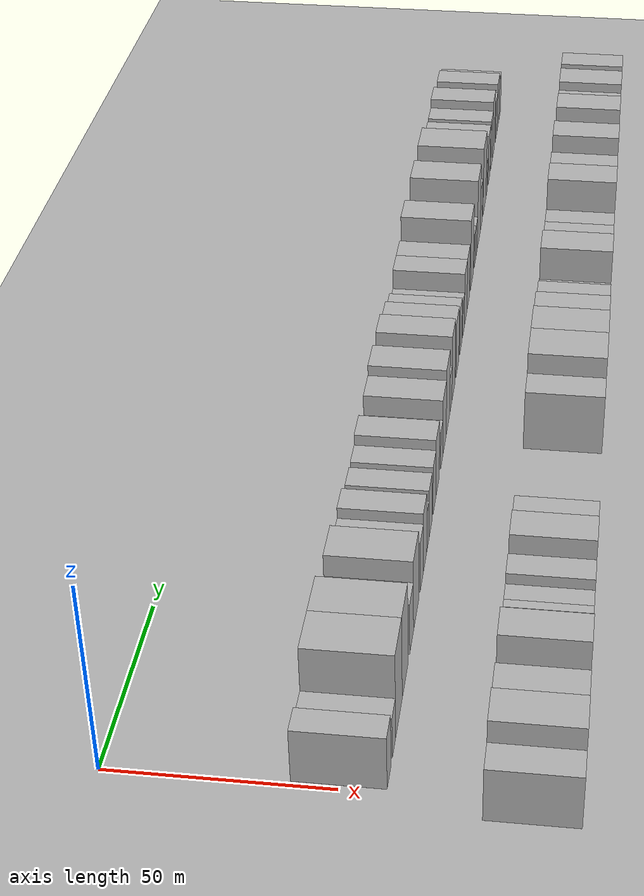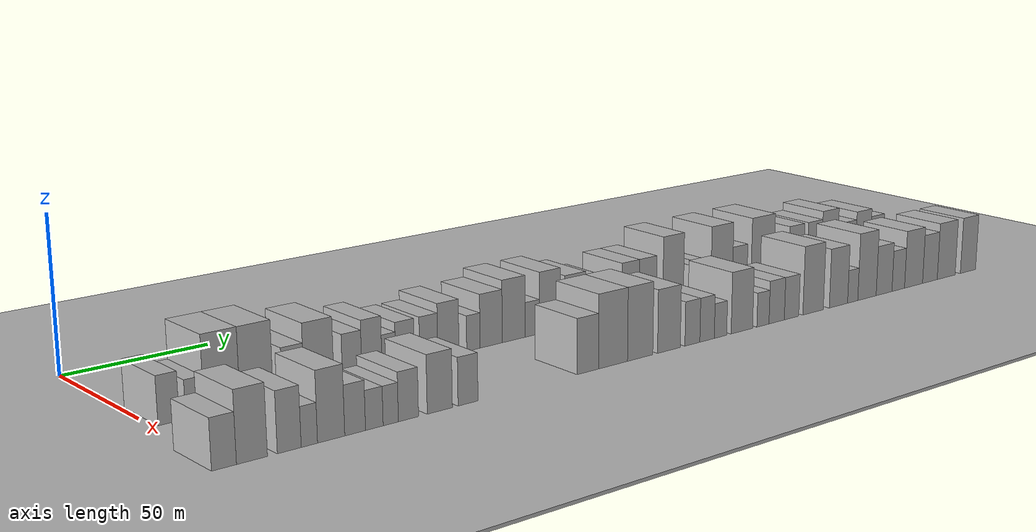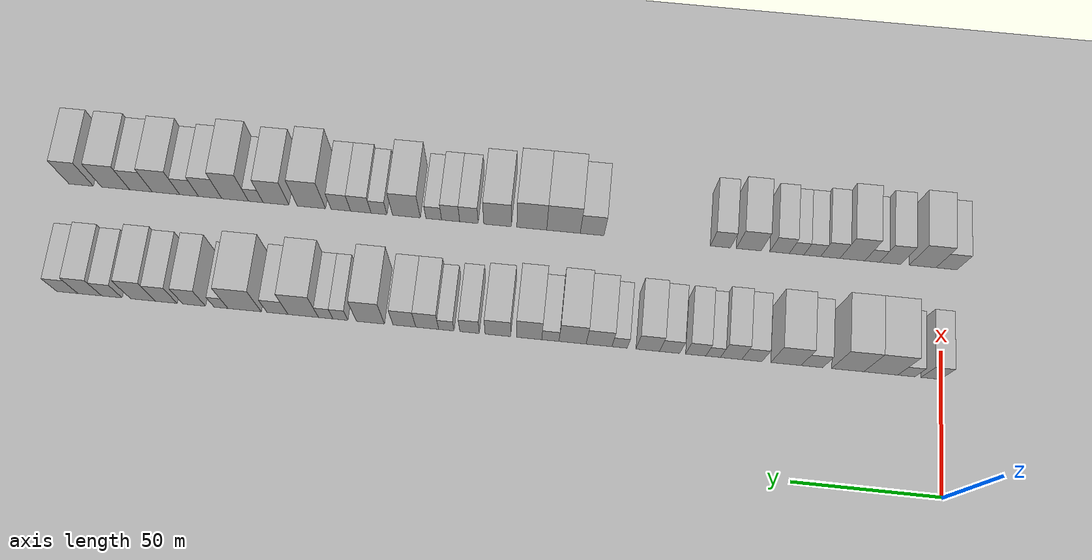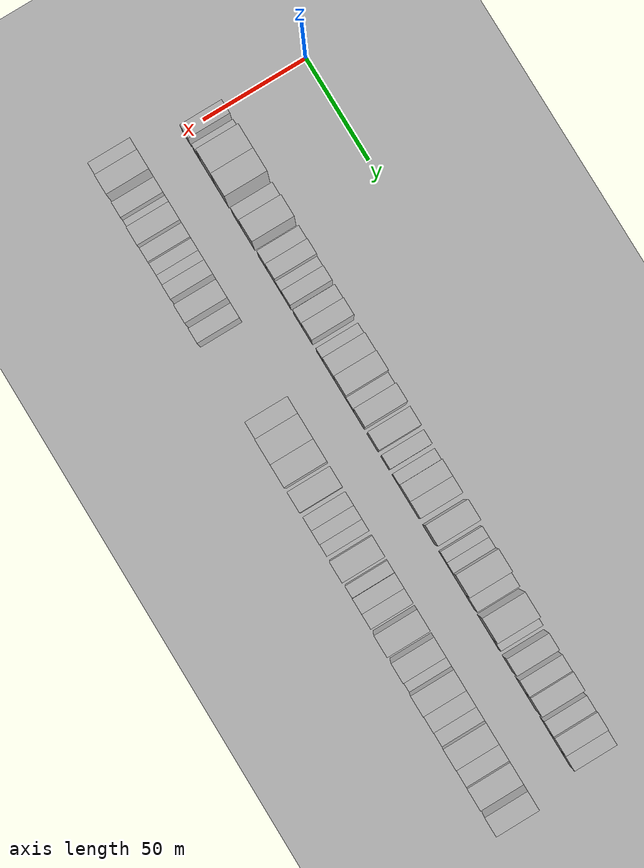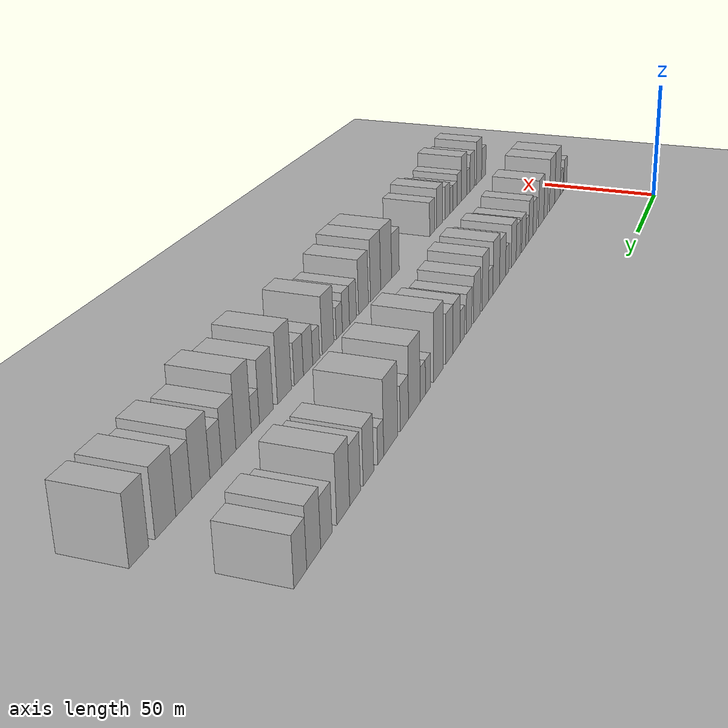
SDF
<sdf version="1.6">
 <world name="default">
  <include><name>ground_plane_1</name><uri>model://HANNAS_ground_plane</uri></include>
  <include>
   <name>ground_plane_2</name>
   <uri>model://HANNAS_ground_plane</uri>
   <pose>100 0 0  0 0 0</pose>
  </include>
  <model name="building_35">
   <static>1</static>
   <pose>50.0000 3.9535 0 0.000000 0.000000 0.000000</pose>
   <link name="link">
    <pose>0 0 7.50 0 0 0</pose>
    <collision name="collision"><geometry><box><size>20.0000 6.5547 15.0000</size></box></geometry></collision>
    <visual name="visual">
     <cast_shadows>0</cast_shadows>
     <geometry><box><size>20.0000 6.5547 15.0000</size></box></geometry>
     <material>
      <script>
       <uri>model://HANNAS_wall/materials/scripts</uri>
       <uri>model://HANNAS_wall/materials/textures</uri>
       <name>vrc/HANNAS_wall</name>
      </script>
     </material>
    </visual>
   </link>
  </model>
  <model name="building_36">
   <static>1</static>
   <pose>50.0000 12.1272 0 0.000000 0.000000 0.000000</pose>
   <link name="link">
    <pose>0 0 6.00 0 0 0</pose>
    <collision name="collision"><geometry><box><size>20.0000 5.7927 12.0000</size></box></geometry></collision>
    <visual name="visual">
     <cast_shadows>0</cast_shadows>
     <geometry><box><size>20.0000 5.7927 12.0000</size></box></geometry>
     <material>
      <script>
       <uri>model://HANNAS_wall/materials/scripts</uri>
       <uri>model://HANNAS_wall/materials/textures</uri>
       <name>vrc/HANNAS_wall</name>
      </script>
     </material>
    </visual>
   </link>
  </model>
  <model name="building_37">
   <static>1</static>
   <pose>50.0000 20.7689 0 0.000000 0.000000 0.000000</pose>
   <link name="link">
    <pose>0 0 12.00 0 0 0</pose>
    <collision name="collision"><geometry><box><size>20.0000 11.4906 24.0000</size></box></geometry></collision>
    <visual name="visual">
     <cast_shadows>0</cast_shadows>
     <geometry><box><size>20.0000 11.4906 24.0000</size></box></geometry>
     <material>
      <script>
       <uri>model://HANNAS_wall/materials/scripts</uri>
       <uri>model://HANNAS_wall/materials/textures</uri>
       <name>vrc/HANNAS_wall</name>
      </script>
     </material>
    </visual>
   </link>
  </model>
  <model name="building_38">
   <static>1</static>
   <pose>50.0000 31.9751 0 0.000000 0.000000 0.000000</pose>
   <link name="link">
    <pose>0 0 12.00 0 0 0</pose>
    <collision name="collision"><geometry><box><size>20.0000 10.9218 24.0000</size></box></geometry></collision>
    <visual name="visual">
     <cast_shadows>0</cast_shadows>
     <geometry><box><size>20.0000 10.9218 24.0000</size></box></geometry>
     <material>
      <script>
       <uri>model://HANNAS_wall/materials/scripts</uri>
       <uri>model://HANNAS_wall/materials/textures</uri>
       <name>vrc/HANNAS_wall</name>
      </script>
     </material>
    </visual>
   </link>
  </model>
  <model name="building_39">
   <static>1</static>
   <pose>50.0000 44.1195 0 0.000000 0.000000 0.000000</pose>
   <link name="link">
    <pose>0 0 7.50 0 0 0</pose>
    <collision name="collision"><geometry><box><size>20.0000 7.3670 15.0000</size></box></geometry></collision>
    <visual name="visual">
     <cast_shadows>0</cast_shadows>
     <geometry><box><size>20.0000 7.3670 15.0000</size></box></geometry>
     <material>
      <script>
       <uri>model://HANNAS_wall/materials/scripts</uri>
       <uri>model://HANNAS_wall/materials/textures</uri>
       <name>vrc/HANNAS_wall</name>
      </script>
     </material>
    </visual>
   </link>
  </model>
  <model name="building_40">
   <static>1</static>
   <pose>50.0000 52.9714 0 0.000000 0.000000 0.000000</pose>
   <link name="link">
    <pose>0 0 10.50 0 0 0</pose>
    <collision name="collision"><geometry><box><size>20.0000 10.3369 21.0000</size></box></geometry></collision>
    <visual name="visual">
     <cast_shadows>0</cast_shadows>
     <geometry><box><size>20.0000 10.3369 21.0000</size></box></geometry>
     <material>
      <script>
       <uri>model://HANNAS_wall/materials/scripts</uri>
       <uri>model://HANNAS_wall/materials/textures</uri>
       <name>vrc/HANNAS_wall</name>
      </script>
     </material>
    </visual>
   </link>
  </model>
  <model name="building_41">
   <static>1</static>
   <pose>50.0000 64.5912 0 0.000000 0.000000 0.000000</pose>
   <link name="link">
    <pose>0 0 7.50 0 0 0</pose>
    <collision name="collision"><geometry><box><size>20.0000 6.9026 15.0000</size></box></geometry></collision>
    <visual name="visual">
     <cast_shadows>0</cast_shadows>
     <geometry><box><size>20.0000 6.9026 15.0000</size></box></geometry>
     <material>
      <script>
       <uri>model://HANNAS_wall/materials/scripts</uri>
       <uri>model://HANNAS_wall/materials/textures</uri>
       <name>vrc/HANNAS_wall</name>
      </script>
     </material>
    </visual>
   </link>
  </model>
  <model name="building_42">
   <static>1</static>
   <pose>50.0000 71.6783 0 0.000000 0.000000 0.000000</pose>
   <link name="link">
    <pose>0 0 9.00 0 0 0</pose>
    <collision name="collision"><geometry><box><size>20.0000 7.2717 18.0000</size></box></geometry></collision>
    <visual name="visual">
     <cast_shadows>0</cast_shadows>
     <geometry><box><size>20.0000 7.2717 18.0000</size></box></geometry>
     <material>
      <script>
       <uri>model://HANNAS_wall/materials/scripts</uri>
       <uri>model://HANNAS_wall/materials/textures</uri>
       <name>vrc/HANNAS_wall</name>
      </script>
     </material>
    </visual>
   </link>
  </model>
  <model name="building_43">
   <static>1</static>
   <pose>50.0000 77.8139 0 0.000000 0.000000 0.000000</pose>
   <link name="link">
    <pose>0 0 6.00 0 0 0</pose>
    <collision name="collision"><geometry><box><size>20.0000 4.9995 12.0000</size></box></geometry></collision>
    <visual name="visual">
     <cast_shadows>0</cast_shadows>
     <geometry><box><size>20.0000 4.9995 12.0000</size></box></geometry>
     <material>
      <script>
       <uri>model://HANNAS_wall/materials/scripts</uri>
       <uri>model://HANNAS_wall/materials/textures</uri>
       <name>vrc/HANNAS_wall</name>
      </script>
     </material>
    </visual>
   </link>
  </model>
  <model name="building_44">
   <static>1</static>
   <pose>50.0000 83.7802 0 0.000000 0.000000 0.000000</pose>
   <link name="link">
    <pose>0 0 7.50 0 0 0</pose>
    <collision name="collision"><geometry><box><size>20.0000 6.9331 15.0000</size></box></geometry></collision>
    <visual name="visual">
     <cast_shadows>0</cast_shadows>
     <geometry><box><size>20.0000 6.9331 15.0000</size></box></geometry>
     <material>
      <script>
       <uri>model://HANNAS_wall/materials/scripts</uri>
       <uri>model://HANNAS_wall/materials/textures</uri>
       <name>vrc/HANNAS_wall</name>
      </script>
     </material>
    </visual>
   </link>
  </model>
  <model name="building_45">
   <static>1</static>
   <pose>50.0000 92.6719 0 0.000000 0.000000 0.000000</pose>
   <link name="link">
    <pose>0 0 7.50 0 0 0</pose>
    <collision name="collision"><geometry><box><size>20.0000 6.8504 15.0000</size></box></geometry></collision>
    <visual name="visual">
     <cast_shadows>0</cast_shadows>
     <geometry><box><size>20.0000 6.8504 15.0000</size></box></geometry>
     <material>
      <script>
       <uri>model://HANNAS_wall/materials/scripts</uri>
       <uri>model://HANNAS_wall/materials/textures</uri>
       <name>vrc/HANNAS_wall</name>
      </script>
     </material>
    </visual>
   </link>
  </model>
  <model name="building_46">
   <static>1</static>
   <pose>50.0000 100.1670 0 0.000000 0.000000 0.000000</pose>
   <link name="link">
    <pose>0 0 9.00 0 0 0</pose>
    <collision name="collision"><geometry><box><size>20.0000 8.1397 18.0000</size></box></geometry></collision>
    <visual name="visual">
     <cast_shadows>0</cast_shadows>
     <geometry><box><size>20.0000 8.1397 18.0000</size></box></geometry>
     <material>
      <script>
       <uri>model://HANNAS_wall/materials/scripts</uri>
       <uri>model://HANNAS_wall/materials/textures</uri>
       <name>vrc/HANNAS_wall</name>
      </script>
     </material>
    </visual>
   </link>
  </model>
  <model name="building_47">
   <static>1</static>
   <pose>50.0000 109.8705 0 0.000000 0.000000 0.000000</pose>
   <link name="link">
    <pose>0 0 6.00 0 0 0</pose>
    <collision name="collision"><geometry><box><size>20.0000 5.2673 12.0000</size></box></geometry></collision>
    <visual name="visual">
     <cast_shadows>0</cast_shadows>
     <geometry><box><size>20.0000 5.2673 12.0000</size></box></geometry>
     <material>
      <script>
       <uri>model://HANNAS_wall/materials/scripts</uri>
       <uri>model://HANNAS_wall/materials/textures</uri>
       <name>vrc/HANNAS_wall</name>
      </script>
     </material>
    </visual>
   </link>
  </model>
  <model name="building_48">
   <static>1</static>
   <pose>50.0000 116.9437 0 0.000000 0.000000 0.000000</pose>
   <link name="link">
    <pose>0 0 9.00 0 0 0</pose>
    <collision name="collision"><geometry><box><size>20.0000 8.8791 18.0000</size></box></geometry></collision>
    <visual name="visual">
     <cast_shadows>0</cast_shadows>
     <geometry><box><size>20.0000 8.8791 18.0000</size></box></geometry>
     <material>
      <script>
       <uri>model://HANNAS_wall/materials/scripts</uri>
       <uri>model://HANNAS_wall/materials/textures</uri>
       <name>vrc/HANNAS_wall</name>
      </script>
     </material>
    </visual>
   </link>
  </model>
  <model name="building_49">
   <static>1</static>
   <pose>50.0000 126.0535 0 0.000000 0.000000 0.000000</pose>
   <link name="link">
    <pose>0 0 10.50 0 0 0</pose>
    <collision name="collision"><geometry><box><size>20.0000 9.3406 21.0000</size></box></geometry></collision>
    <visual name="visual">
     <cast_shadows>0</cast_shadows>
     <geometry><box><size>20.0000 9.3406 21.0000</size></box></geometry>
     <material>
      <script>
       <uri>model://HANNAS_wall/materials/scripts</uri>
       <uri>model://HANNAS_wall/materials/textures</uri>
       <name>vrc/HANNAS_wall</name>
      </script>
     </material>
    </visual>
   </link>
  </model>
  <model name="building_50">
   <static>1</static>
   <pose>50.0000 133.6746 0 0.000000 0.000000 0.000000</pose>
   <link name="link">
    <pose>0 0 6.00 0 0 0</pose>
    <collision name="collision"><geometry><box><size>20.0000 5.9016 12.0000</size></box></geometry></collision>
    <visual name="visual">
     <cast_shadows>0</cast_shadows>
     <geometry><box><size>20.0000 5.9016 12.0000</size></box></geometry>
     <material>
      <script>
       <uri>model://HANNAS_wall/materials/scripts</uri>
       <uri>model://HANNAS_wall/materials/textures</uri>
       <name>vrc/HANNAS_wall</name>
      </script>
     </material>
    </visual>
   </link>
  </model>
  <model name="building_51">
   <static>1</static>
   <pose>50.0000 140.9963 0 0.000000 0.000000 0.000000</pose>
   <link name="link">
    <pose>0 0 10.50 0 0 0</pose>
    <collision name="collision"><geometry><box><size>20.0000 8.7419 21.0000</size></box></geometry></collision>
    <visual name="visual">
     <cast_shadows>0</cast_shadows>
     <geometry><box><size>20.0000 8.7419 21.0000</size></box></geometry>
     <material>
      <script>
       <uri>model://HANNAS_wall/materials/scripts</uri>
       <uri>model://HANNAS_wall/materials/textures</uri>
       <name>vrc/HANNAS_wall</name>
      </script>
     </material>
    </visual>
   </link>
  </model>
  <model name="building_52">
   <static>1</static>
   <pose>50.0000 151.7651 0 0.000000 0.000000 0.000000</pose>
   <link name="link">
    <pose>0 0 9.00 0 0 0</pose>
    <collision name="collision"><geometry><box><size>20.0000 8.7956 18.0000</size></box></geometry></collision>
    <visual name="visual">
     <cast_shadows>0</cast_shadows>
     <geometry><box><size>20.0000 8.7956 18.0000</size></box></geometry>
     <material>
      <script>
       <uri>model://HANNAS_wall/materials/scripts</uri>
       <uri>model://HANNAS_wall/materials/textures</uri>
       <name>vrc/HANNAS_wall</name>
      </script>
     </material>
    </visual>
   </link>
  </model>
  <model name="building_53">
   <static>1</static>
   <pose>50.0000 161.5239 0 0.000000 0.000000 0.000000</pose>
   <link name="link">
    <pose>0 0 7.50 0 0 0</pose>
    <collision name="collision"><geometry><box><size>20.0000 6.7221 15.0000</size></box></geometry></collision>
    <visual name="visual">
     <cast_shadows>0</cast_shadows>
     <geometry><box><size>20.0000 6.7221 15.0000</size></box></geometry>
     <material>
      <script>
       <uri>model://HANNAS_wall/materials/scripts</uri>
       <uri>model://HANNAS_wall/materials/textures</uri>
       <name>vrc/HANNAS_wall</name>
      </script>
     </material>
    </visual>
   </link>
  </model>
  <model name="building_54">
   <static>1</static>
   <pose>50.0000 169.5482 0 0.000000 0.000000 0.000000</pose>
   <link name="link">
    <pose>0 0 6.00 0 0 0</pose>
    <collision name="collision"><geometry><box><size>20.0000 5.3264 12.0000</size></box></geometry></collision>
    <visual name="visual">
     <cast_shadows>0</cast_shadows>
     <geometry><box><size>20.0000 5.3264 12.0000</size></box></geometry>
     <material>
      <script>
       <uri>model://HANNAS_wall/materials/scripts</uri>
       <uri>model://HANNAS_wall/materials/textures</uri>
       <name>vrc/HANNAS_wall</name>
      </script>
     </material>
    </visual>
   </link>
  </model>
  <model name="building_55">
   <static>1</static>
   <pose>50.0000 176.1844 0 0.000000 0.000000 0.000000</pose>
   <link name="link">
    <pose>0 0 9.00 0 0 0</pose>
    <collision name="collision"><geometry><box><size>20.0000 7.9460 18.0000</size></box></geometry></collision>
    <visual name="visual">
     <cast_shadows>0</cast_shadows>
     <geometry><box><size>20.0000 7.9460 18.0000</size></box></geometry>
     <material>
      <script>
       <uri>model://HANNAS_wall/materials/scripts</uri>
       <uri>model://HANNAS_wall/materials/textures</uri>
       <name>vrc/HANNAS_wall</name>
      </script>
     </material>
    </visual>
   </link>
  </model>
  <model name="building_56">
   <static>1</static>
   <pose>50.0000 184.0866 0 0.000000 0.000000 0.000000</pose>
   <link name="link">
    <pose>0 0 9.00 0 0 0</pose>
    <collision name="collision"><geometry><box><size>20.0000 7.8584 18.0000</size></box></geometry></collision>
    <visual name="visual">
     <cast_shadows>0</cast_shadows>
     <geometry><box><size>20.0000 7.8584 18.0000</size></box></geometry>
     <material>
      <script>
       <uri>model://HANNAS_wall/materials/scripts</uri>
       <uri>model://HANNAS_wall/materials/textures</uri>
       <name>vrc/HANNAS_wall</name>
      </script>
     </material>
    </visual>
   </link>
  </model>
  <model name="building_57">
   <static>1</static>
   <pose>50.0000 195.8710 0 0.000000 0.000000 0.000000</pose>
   <link name="link">
    <pose>0 0 12.00 0 0 0</pose>
    <collision name="collision"><geometry><box><size>20.0000 9.7103 24.0000</size></box></geometry></collision>
    <visual name="visual">
     <cast_shadows>0</cast_shadows>
     <geometry><box><size>20.0000 9.7103 24.0000</size></box></geometry>
     <material>
      <script>
       <uri>model://HANNAS_wall/materials/scripts</uri>
       <uri>model://HANNAS_wall/materials/textures</uri>
       <name>vrc/HANNAS_wall</name>
      </script>
     </material>
    </visual>
   </link>
  </model>
  <model name="building_58">
   <static>1</static>
   <pose>50.0000 206.3049 0 0.000000 0.000000 0.000000</pose>
   <link name="link">
    <pose>0 0 6.00 0 0 0</pose>
    <collision name="collision"><geometry><box><size>20.0000 5.1576 12.0000</size></box></geometry></collision>
    <visual name="visual">
     <cast_shadows>0</cast_shadows>
     <geometry><box><size>20.0000 5.1576 12.0000</size></box></geometry>
     <material>
      <script>
       <uri>model://HANNAS_wall/materials/scripts</uri>
       <uri>model://HANNAS_wall/materials/textures</uri>
       <name>vrc/HANNAS_wall</name>
      </script>
     </material>
    </visual>
   </link>
  </model>
  <model name="building_59">
   <static>1</static>
   <pose>50.0000 211.4171 0 0.000000 0.000000 0.000000</pose>
   <link name="link">
    <pose>0 0 6.00 0 0 0</pose>
    <collision name="collision"><geometry><box><size>20.0000 5.0667 12.0000</size></box></geometry></collision>
    <visual name="visual">
     <cast_shadows>0</cast_shadows>
     <geometry><box><size>20.0000 5.0667 12.0000</size></box></geometry>
     <material>
      <script>
       <uri>model://HANNAS_wall/materials/scripts</uri>
       <uri>model://HANNAS_wall/materials/textures</uri>
       <name>vrc/HANNAS_wall</name>
      </script>
     </material>
    </visual>
   </link>
  </model>
  <model name="building_60">
   <static>1</static>
   <pose>50.0000 219.2681 0 0.000000 0.000000 0.000000</pose>
   <link name="link">
    <pose>0 0 12.00 0 0 0</pose>
    <collision name="collision"><geometry><box><size>20.0000 10.6354 24.0000</size></box></geometry></collision>
    <visual name="visual">
     <cast_shadows>0</cast_shadows>
     <geometry><box><size>20.0000 10.6354 24.0000</size></box></geometry>
     <material>
      <script>
       <uri>model://HANNAS_wall/materials/scripts</uri>
       <uri>model://HANNAS_wall/materials/textures</uri>
       <name>vrc/HANNAS_wall</name>
      </script>
     </material>
    </visual>
   </link>
  </model>
  <model name="building_61">
   <static>1</static>
   <pose>50.0000 228.2614 0 0.000000 0.000000 0.000000</pose>
   <link name="link">
    <pose>0 0 7.50 0 0 0</pose>
    <collision name="collision"><geometry><box><size>20.0000 7.3512 15.0000</size></box></geometry></collision>
    <visual name="visual">
     <cast_shadows>0</cast_shadows>
     <geometry><box><size>20.0000 7.3512 15.0000</size></box></geometry>
     <material>
      <script>
       <uri>model://HANNAS_wall/materials/scripts</uri>
       <uri>model://HANNAS_wall/materials/textures</uri>
       <name>vrc/HANNAS_wall</name>
      </script>
     </material>
    </visual>
   </link>
  </model>
  <model name="building_62">
   <static>1</static>
   <pose>50.0000 239.7680 0 0.000000 0.000000 0.000000</pose>
   <link name="link">
    <pose>0 0 12.00 0 0 0</pose>
    <collision name="collision"><geometry><box><size>20.0000 11.6618 24.0000</size></box></geometry></collision>
    <visual name="visual">
     <cast_shadows>0</cast_shadows>
     <geometry><box><size>20.0000 11.6618 24.0000</size></box></geometry>
     <material>
      <script>
       <uri>model://HANNAS_wall/materials/scripts</uri>
       <uri>model://HANNAS_wall/materials/textures</uri>
       <name>vrc/HANNAS_wall</name>
      </script>
     </material>
    </visual>
   </link>
  </model>
  <model name="building_63">
   <static>1</static>
   <pose>50.0000 248.0155 0 0.000000 0.000000 0.000000</pose>
   <link name="link">
    <pose>0 0 6.00 0 0 0</pose>
    <collision name="collision"><geometry><box><size>20.0000 4.8333 12.0000</size></box></geometry></collision>
    <visual name="visual">
     <cast_shadows>0</cast_shadows>
     <geometry><box><size>20.0000 4.8333 12.0000</size></box></geometry>
     <material>
      <script>
       <uri>model://HANNAS_wall/materials/scripts</uri>
       <uri>model://HANNAS_wall/materials/textures</uri>
       <name>vrc/HANNAS_wall</name>
      </script>
     </material>
    </visual>
   </link>
  </model>
  <model name="building_64">
   <static>1</static>
   <pose>50.0000 257.3985 0 0.000000 0.000000 0.000000</pose>
   <link name="link">
    <pose>0 0 9.00 0 0 0</pose>
    <collision name="collision"><geometry><box><size>20.0000 7.9327 18.0000</size></box></geometry></collision>
    <visual name="visual">
     <cast_shadows>0</cast_shadows>
     <geometry><box><size>20.0000 7.9327 18.0000</size></box></geometry>
     <material>
      <script>
       <uri>model://HANNAS_wall/materials/scripts</uri>
       <uri>model://HANNAS_wall/materials/textures</uri>
       <name>vrc/HANNAS_wall</name>
      </script>
     </material>
    </visual>
   </link>
  </model>
  <model name="building_65">
   <static>1</static>
   <pose>50.0000 267.1753 0 0.000000 0.000000 0.000000</pose>
   <link name="link">
    <pose>0 0 9.00 0 0 0</pose>
    <collision name="collision"><geometry><box><size>20.0000 7.6208 18.0000</size></box></geometry></collision>
    <visual name="visual">
     <cast_shadows>0</cast_shadows>
     <geometry><box><size>20.0000 7.6208 18.0000</size></box></geometry>
     <material>
      <script>
       <uri>model://HANNAS_wall/materials/scripts</uri>
       <uri>model://HANNAS_wall/materials/textures</uri>
       <name>vrc/HANNAS_wall</name>
      </script>
     </material>
    </visual>
   </link>
  </model>
  <model name="building_66">
   <static>1</static>
   <pose>50.0000 275.3630 0 0.000000 0.000000 0.000000</pose>
   <link name="link">
    <pose>0 0 10.50 0 0 0</pose>
    <collision name="collision"><geometry><box><size>20.0000 8.7547 21.0000</size></box></geometry></collision>
    <visual name="visual">
     <cast_shadows>0</cast_shadows>
     <geometry><box><size>20.0000 8.7547 21.0000</size></box></geometry>
     <material>
      <script>
       <uri>model://HANNAS_wall/materials/scripts</uri>
       <uri>model://HANNAS_wall/materials/textures</uri>
       <name>vrc/HANNAS_wall</name>
      </script>
     </material>
    </visual>
   </link>
  </model>
  <model name="building_67">
   <static>1</static>
   <pose>50.0000 286.3343 0 0.000000 0.000000 0.000000</pose>
   <link name="link">
    <pose>0 0 7.50 0 0 0</pose>
    <collision name="collision"><geometry><box><size>20.0000 7.1880 15.0000</size></box></geometry></collision>
    <visual name="visual">
     <cast_shadows>0</cast_shadows>
     <geometry><box><size>20.0000 7.1880 15.0000</size></box></geometry>
     <material>
      <script>
       <uri>model://HANNAS_wall/materials/scripts</uri>
       <uri>model://HANNAS_wall/materials/textures</uri>
       <name>vrc/HANNAS_wall</name>
      </script>
     </material>
    </visual>
   </link>
  </model>
  <model name="building_68">
   <static>1</static>
   <pose>50.0000 294.1236 0 0.000000 0.000000 0.000000</pose>
   <link name="link">
    <pose>0 0 9.00 0 0 0</pose>
    <collision name="collision"><geometry><box><size>20.0000 8.3905 18.0000</size></box></geometry></collision>
    <visual name="visual">
     <cast_shadows>0</cast_shadows>
     <geometry><box><size>20.0000 8.3905 18.0000</size></box></geometry>
     <material>
      <script>
       <uri>model://HANNAS_wall/materials/scripts</uri>
       <uri>model://HANNAS_wall/materials/textures</uri>
       <name>vrc/HANNAS_wall</name>
      </script>
     </material>
    </visual>
   </link>
  </model>
  <model name="building_69">
   <static>1</static>
   <pose>50.0000 302.0351 0 0.000000 0.000000 0.000000</pose>
   <link name="link">
    <pose>0 0 7.50 0 0 0</pose>
    <collision name="collision"><geometry><box><size>20.0000 7.4324 15.0000</size></box></geometry></collision>
    <visual name="visual">
     <cast_shadows>0</cast_shadows>
     <geometry><box><size>20.0000 7.4324 15.0000</size></box></geometry>
     <material>
      <script>
       <uri>model://HANNAS_wall/materials/scripts</uri>
       <uri>model://HANNAS_wall/materials/textures</uri>
       <name>vrc/HANNAS_wall</name>
      </script>
     </material>
    </visual>
   </link>
  </model>
  <model name="building_104">
   <static>1</static>
   <pose>90.0000 -1.6800 0 0.000000 0.000000 0.000000</pose>
   <link name="link">
    <pose>0 0 7.50 0 0 0</pose>
    <collision name="collision"><geometry><box><size>20.0000 7.3227 15.0000</size></box></geometry></collision>
    <visual name="visual">
     <cast_shadows>0</cast_shadows>
     <geometry><box><size>20.0000 7.3227 15.0000</size></box></geometry>
     <material>
      <script>
       <uri>model://HANNAS_wall/materials/scripts</uri>
       <uri>model://HANNAS_wall/materials/textures</uri>
       <name>vrc/HANNAS_wall</name>
      </script>
     </material>
    </visual>
   </link>
  </model>
  <model name="building_105">
   <static>1</static>
   <pose>90.0000 6.6224 0 0.000000 0.000000 0.000000</pose>
   <link name="link">
    <pose>0 0 10.50 0 0 0</pose>
    <collision name="collision"><geometry><box><size>20.0000 9.2821 21.0000</size></box></geometry></collision>
    <visual name="visual">
     <cast_shadows>0</cast_shadows>
     <geometry><box><size>20.0000 9.2821 21.0000</size></box></geometry>
     <material>
      <script>
       <uri>model://HANNAS_wall/materials/scripts</uri>
       <uri>model://HANNAS_wall/materials/textures</uri>
       <name>vrc/HANNAS_wall</name>
      </script>
     </material>
    </visual>
   </link>
  </model>
  <model name="building_106">
   <static>1</static>
   <pose>90.0000 17.9447 0 0.000000 0.000000 0.000000</pose>
   <link name="link">
    <pose>0 0 9.00 0 0 0</pose>
    <collision name="collision"><geometry><box><size>20.0000 7.3625 18.0000</size></box></geometry></collision>
    <visual name="visual">
     <cast_shadows>0</cast_shadows>
     <geometry><box><size>20.0000 7.3625 18.0000</size></box></geometry>
     <material>
      <script>
       <uri>model://HANNAS_wall/materials/scripts</uri>
       <uri>model://HANNAS_wall/materials/textures</uri>
       <name>vrc/HANNAS_wall</name>
      </script>
     </material>
    </visual>
   </link>
  </model>
  <model name="building_107">
   <static>1</static>
   <pose>90.0000 24.1893 0 0.000000 0.000000 0.000000</pose>
   <link name="link">
    <pose>0 0 6.00 0 0 0</pose>
    <collision name="collision"><geometry><box><size>20.0000 5.1267 12.0000</size></box></geometry></collision>
    <visual name="visual">
     <cast_shadows>0</cast_shadows>
     <geometry><box><size>20.0000 5.1267 12.0000</size></box></geometry>
     <material>
      <script>
       <uri>model://HANNAS_wall/materials/scripts</uri>
       <uri>model://HANNAS_wall/materials/textures</uri>
       <name>vrc/HANNAS_wall</name>
      </script>
     </material>
    </visual>
   </link>
  </model>
  <model name="building_108">
   <static>1</static>
   <pose>90.0000 31.0995 0 0.000000 0.000000 0.000000</pose>
   <link name="link">
    <pose>0 0 10.50 0 0 0</pose>
    <collision name="collision"><geometry><box><size>20.0000 8.6936 21.0000</size></box></geometry></collision>
    <visual name="visual">
     <cast_shadows>0</cast_shadows>
     <geometry><box><size>20.0000 8.6936 21.0000</size></box></geometry>
     <material>
      <script>
       <uri>model://HANNAS_wall/materials/scripts</uri>
       <uri>model://HANNAS_wall/materials/textures</uri>
       <name>vrc/HANNAS_wall</name>
      </script>
     </material>
    </visual>
   </link>
  </model>
  <model name="building_109">
   <static>1</static>
   <pose>90.0000 38.8244 0 0.000000 0.000000 0.000000</pose>
   <link name="link">
    <pose>0 0 7.50 0 0 0</pose>
    <collision name="collision"><geometry><box><size>20.0000 6.7562 15.0000</size></box></geometry></collision>
    <visual name="visual">
     <cast_shadows>0</cast_shadows>
     <geometry><box><size>20.0000 6.7562 15.0000</size></box></geometry>
     <material>
      <script>
       <uri>model://HANNAS_wall/materials/scripts</uri>
       <uri>model://HANNAS_wall/materials/textures</uri>
       <name>vrc/HANNAS_wall</name>
      </script>
     </material>
    </visual>
   </link>
  </model>
  <model name="building_110">
   <static>1</static>
   <pose>90.0000 45.1124 0 0.000000 0.000000 0.000000</pose>
   <link name="link">
    <pose>0 0 6.00 0 0 0</pose>
    <collision name="collision"><geometry><box><size>20.0000 5.8198 12.0000</size></box></geometry></collision>
    <visual name="visual">
     <cast_shadows>0</cast_shadows>
     <geometry><box><size>20.0000 5.8198 12.0000</size></box></geometry>
     <material>
      <script>
       <uri>model://HANNAS_wall/materials/scripts</uri>
       <uri>model://HANNAS_wall/materials/textures</uri>
       <name>vrc/HANNAS_wall</name>
      </script>
     </material>
    </visual>
   </link>
  </model>
  <model name="building_111">
   <static>1</static>
   <pose>90.0000 50.5832 0 0.000000 0.000000 0.000000</pose>
   <link name="link">
    <pose>0 0 6.00 0 0 0</pose>
    <collision name="collision"><geometry><box><size>20.0000 5.1218 12.0000</size></box></geometry></collision>
    <visual name="visual">
     <cast_shadows>0</cast_shadows>
     <geometry><box><size>20.0000 5.1218 12.0000</size></box></geometry>
     <material>
      <script>
       <uri>model://HANNAS_wall/materials/scripts</uri>
       <uri>model://HANNAS_wall/materials/textures</uri>
       <name>vrc/HANNAS_wall</name>
      </script>
     </material>
    </visual>
   </link>
  </model>
  <model name="building_112">
   <static>1</static>
   <pose>90.0000 56.5675 0 0.000000 0.000000 0.000000</pose>
   <link name="link">
    <pose>0 0 7.50 0 0 0</pose>
    <collision name="collision"><geometry><box><size>20.0000 6.8467 15.0000</size></box></geometry></collision>
    <visual name="visual">
     <cast_shadows>0</cast_shadows>
     <geometry><box><size>20.0000 6.8467 15.0000</size></box></geometry>
     <material>
      <script>
       <uri>model://HANNAS_wall/materials/scripts</uri>
       <uri>model://HANNAS_wall/materials/textures</uri>
       <name>vrc/HANNAS_wall</name>
      </script>
     </material>
    </visual>
   </link>
  </model>
  <model name="building_113">
   <static>1</static>
   <pose>90.0000 67.3878 0 0.000000 0.000000 0.000000</pose>
   <link name="link">
    <pose>0 0 9.00 0 0 0</pose>
    <collision name="collision"><geometry><box><size>20.0000 8.7938 18.0000</size></box></geometry></collision>
    <visual name="visual">
     <cast_shadows>0</cast_shadows>
     <geometry><box><size>20.0000 8.7938 18.0000</size></box></geometry>
     <material>
      <script>
       <uri>model://HANNAS_wall/materials/scripts</uri>
       <uri>model://HANNAS_wall/materials/textures</uri>
       <name>vrc/HANNAS_wall</name>
      </script>
     </material>
    </visual>
   </link>
  </model>
  <model name="building_114">
   <static>1</static>
   <pose>90.0000 77.3530 0 0.000000 0.000000 0.000000</pose>
   <link name="link">
    <pose>0 0 7.50 0 0 0</pose>
    <collision name="collision"><geometry><box><size>20.0000 7.1366 15.0000</size></box></geometry></collision>
    <visual name="visual">
     <cast_shadows>0</cast_shadows>
     <geometry><box><size>20.0000 7.1366 15.0000</size></box></geometry>
     <material>
      <script>
       <uri>model://HANNAS_wall/materials/scripts</uri>
       <uri>model://HANNAS_wall/materials/textures</uri>
       <name>vrc/HANNAS_wall</name>
      </script>
     </material>
    </visual>
   </link>
  </model>
  <model name="building_115">
   <static>1</static>
   <pose>90.0000 122.6026 0 0.000000 0.000000 0.000000</pose>
   <link name="link">
    <pose>0 0 9.00 0 0 0</pose>
    <collision name="collision"><geometry><box><size>20.0000 8.4542 18.0000</size></box></geometry></collision>
    <visual name="visual">
     <cast_shadows>0</cast_shadows>
     <geometry><box><size>20.0000 8.4542 18.0000</size></box></geometry>
     <material>
      <script>
       <uri>model://HANNAS_wall/materials/scripts</uri>
       <uri>model://HANNAS_wall/materials/textures</uri>
       <name>vrc/HANNAS_wall</name>
      </script>
     </material>
    </visual>
   </link>
  </model>
  <model name="building_116">
   <static>1</static>
   <pose>90.0000 132.7467 0 0.000000 0.000000 0.000000</pose>
   <link name="link">
    <pose>0 0 12.00 0 0 0</pose>
    <collision name="collision"><geometry><box><size>20.0000 11.8341 24.0000</size></box></geometry></collision>
    <visual name="visual">
     <cast_shadows>0</cast_shadows>
     <geometry><box><size>20.0000 11.8341 24.0000</size></box></geometry>
     <material>
      <script>
       <uri>model://HANNAS_wall/materials/scripts</uri>
       <uri>model://HANNAS_wall/materials/textures</uri>
       <name>vrc/HANNAS_wall</name>
      </script>
     </material>
    </visual>
   </link>
  </model>
  <model name="building_117">
   <static>1</static>
   <pose>90.0000 143.9560 0 0.000000 0.000000 0.000000</pose>
   <link name="link">
    <pose>0 0 12.00 0 0 0</pose>
    <collision name="collision"><geometry><box><size>20.0000 10.5844 24.0000</size></box></geometry></collision>
    <visual name="visual">
     <cast_shadows>0</cast_shadows>
     <geometry><box><size>20.0000 10.5844 24.0000</size></box></geometry>
     <material>
      <script>
       <uri>model://HANNAS_wall/materials/scripts</uri>
       <uri>model://HANNAS_wall/materials/textures</uri>
       <name>vrc/HANNAS_wall</name>
      </script>
     </material>
    </visual>
   </link>
  </model>
  <model name="building_118">
   <static>1</static>
   <pose>90.0000 156.1305 0 0.000000 0.000000 0.000000</pose>
   <link name="link">
    <pose>0 0 10.50 0 0 0</pose>
    <collision name="collision"><geometry><box><size>20.0000 9.7646 21.0000</size></box></geometry></collision>
    <visual name="visual">
     <cast_shadows>0</cast_shadows>
     <geometry><box><size>20.0000 9.7646 21.0000</size></box></geometry>
     <material>
      <script>
       <uri>model://HANNAS_wall/materials/scripts</uri>
       <uri>model://HANNAS_wall/materials/textures</uri>
       <name>vrc/HANNAS_wall</name>
      </script>
     </material>
    </visual>
   </link>
  </model>
  <model name="building_119">
   <static>1</static>
   <pose>90.0000 166.2939 0 0.000000 0.000000 0.000000</pose>
   <link name="link">
    <pose>0 0 7.50 0 0 0</pose>
    <collision name="collision"><geometry><box><size>20.0000 6.5622 15.0000</size></box></geometry></collision>
    <visual name="visual">
     <cast_shadows>0</cast_shadows>
     <geometry><box><size>20.0000 6.5622 15.0000</size></box></geometry>
     <material>
      <script>
       <uri>model://HANNAS_wall/materials/scripts</uri>
       <uri>model://HANNAS_wall/materials/textures</uri>
       <name>vrc/HANNAS_wall</name>
      </script>
     </material>
    </visual>
   </link>
  </model>
  <model name="building_120">
   <static>1</static>
   <pose>90.0000 172.7947 0 0.000000 0.000000 0.000000</pose>
   <link name="link">
    <pose>0 0 7.50 0 0 0</pose>
    <collision name="collision"><geometry><box><size>20.0000 6.4393 15.0000</size></box></geometry></collision>
    <visual name="visual">
     <cast_shadows>0</cast_shadows>
     <geometry><box><size>20.0000 6.4393 15.0000</size></box></geometry>
     <material>
      <script>
       <uri>model://HANNAS_wall/materials/scripts</uri>
       <uri>model://HANNAS_wall/materials/textures</uri>
       <name>vrc/HANNAS_wall</name>
      </script>
     </material>
    </visual>
   </link>
  </model>
  <model name="building_121">
   <static>1</static>
   <pose>90.0000 178.8093 0 0.000000 0.000000 0.000000</pose>
   <link name="link">
    <pose>0 0 6.00 0 0 0</pose>
    <collision name="collision"><geometry><box><size>20.0000 5.5898 12.0000</size></box></geometry></collision>
    <visual name="visual">
     <cast_shadows>0</cast_shadows>
     <geometry><box><size>20.0000 5.5898 12.0000</size></box></geometry>
     <material>
      <script>
       <uri>model://HANNAS_wall/materials/scripts</uri>
       <uri>model://HANNAS_wall/materials/textures</uri>
       <name>vrc/HANNAS_wall</name>
      </script>
     </material>
    </visual>
   </link>
  </model>
  <model name="building_122">
   <static>1</static>
   <pose>90.0000 188.5544 0 0.000000 0.000000 0.000000</pose>
   <link name="link">
    <pose>0 0 10.50 0 0 0</pose>
    <collision name="collision"><geometry><box><size>20.0000 9.9004 21.0000</size></box></geometry></collision>
    <visual name="visual">
     <cast_shadows>0</cast_shadows>
     <geometry><box><size>20.0000 9.9004 21.0000</size></box></geometry>
     <material>
      <script>
       <uri>model://HANNAS_wall/materials/scripts</uri>
       <uri>model://HANNAS_wall/materials/textures</uri>
       <name>vrc/HANNAS_wall</name>
      </script>
     </material>
    </visual>
   </link>
  </model>
  <model name="building_123">
   <static>1</static>
   <pose>90.0000 198.3619 0 0.000000 0.000000 0.000000</pose>
   <link name="link">
    <pose>0 0 6.00 0 0 0</pose>
    <collision name="collision"><geometry><box><size>20.0000 5.7146 12.0000</size></box></geometry></collision>
    <visual name="visual">
     <cast_shadows>0</cast_shadows>
     <geometry><box><size>20.0000 5.7146 12.0000</size></box></geometry>
     <material>
      <script>
       <uri>model://HANNAS_wall/materials/scripts</uri>
       <uri>model://HANNAS_wall/materials/textures</uri>
       <name>vrc/HANNAS_wall</name>
      </script>
     </material>
    </visual>
   </link>
  </model>
  <model name="building_124">
   <static>1</static>
   <pose>90.0000 204.8703 0 0.000000 0.000000 0.000000</pose>
   <link name="link">
    <pose>0 0 7.50 0 0 0</pose>
    <collision name="collision"><geometry><box><size>20.0000 7.3021 15.0000</size></box></geometry></collision>
    <visual name="visual">
     <cast_shadows>0</cast_shadows>
     <geometry><box><size>20.0000 7.3021 15.0000</size></box></geometry>
     <material>
      <script>
       <uri>model://HANNAS_wall/materials/scripts</uri>
       <uri>model://HANNAS_wall/materials/textures</uri>
       <name>vrc/HANNAS_wall</name>
      </script>
     </material>
    </visual>
   </link>
  </model>
  <model name="building_125">
   <static>1</static>
   <pose>90.0000 212.0136 0 0.000000 0.000000 0.000000</pose>
   <link name="link">
    <pose>0 0 7.50 0 0 0</pose>
    <collision name="collision"><geometry><box><size>20.0000 6.9846 15.0000</size></box></geometry></collision>
    <visual name="visual">
     <cast_shadows>0</cast_shadows>
     <geometry><box><size>20.0000 6.9846 15.0000</size></box></geometry>
     <material>
      <script>
       <uri>model://HANNAS_wall/materials/scripts</uri>
       <uri>model://HANNAS_wall/materials/textures</uri>
       <name>vrc/HANNAS_wall</name>
      </script>
     </material>
    </visual>
   </link>
  </model>
  <model name="building_126">
   <static>1</static>
   <pose>90.0000 222.5682 0 0.000000 0.000000 0.000000</pose>
   <link name="link">
    <pose>0 0 12.00 0 0 0</pose>
    <collision name="collision"><geometry><box><size>20.0000 10.1247 24.0000</size></box></geometry></collision>
    <visual name="visual">
     <cast_shadows>0</cast_shadows>
     <geometry><box><size>20.0000 10.1247 24.0000</size></box></geometry>
     <material>
      <script>
       <uri>model://HANNAS_wall/materials/scripts</uri>
       <uri>model://HANNAS_wall/materials/textures</uri>
       <name>vrc/HANNAS_wall</name>
      </script>
     </material>
    </visual>
   </link>
  </model>
  <model name="building_127">
   <static>1</static>
   <pose>90.0000 235.2770 0 0.000000 0.000000 0.000000</pose>
   <link name="link">
    <pose>0 0 10.50 0 0 0</pose>
    <collision name="collision"><geometry><box><size>20.0000 9.2929 21.0000</size></box></geometry></collision>
    <visual name="visual">
     <cast_shadows>0</cast_shadows>
     <geometry><box><size>20.0000 9.2929 21.0000</size></box></geometry>
     <material>
      <script>
       <uri>model://HANNAS_wall/materials/scripts</uri>
       <uri>model://HANNAS_wall/materials/textures</uri>
       <name>vrc/HANNAS_wall</name>
      </script>
     </material>
    </visual>
   </link>
  </model>
  <model name="building_128">
   <static>1</static>
   <pose>90.0000 242.5426 0 0.000000 0.000000 0.000000</pose>
   <link name="link">
    <pose>0 0 6.00 0 0 0</pose>
    <collision name="collision"><geometry><box><size>20.0000 5.2384 12.0000</size></box></geometry></collision>
    <visual name="visual">
     <cast_shadows>0</cast_shadows>
     <geometry><box><size>20.0000 5.2384 12.0000</size></box></geometry>
     <material>
      <script>
       <uri>model://HANNAS_wall/materials/scripts</uri>
       <uri>model://HANNAS_wall/materials/textures</uri>
       <name>vrc/HANNAS_wall</name>
      </script>
     </material>
    </visual>
   </link>
  </model>
  <model name="building_129">
   <static>1</static>
   <pose>90.0000 249.9686 0 0.000000 0.000000 0.000000</pose>
   <link name="link">
    <pose>0 0 12.00 0 0 0</pose>
    <collision name="collision"><geometry><box><size>20.0000 9.6135 24.0000</size></box></geometry></collision>
    <visual name="visual">
     <cast_shadows>0</cast_shadows>
     <geometry><box><size>20.0000 9.6135 24.0000</size></box></geometry>
     <material>
      <script>
       <uri>model://HANNAS_wall/materials/scripts</uri>
       <uri>model://HANNAS_wall/materials/textures</uri>
       <name>vrc/HANNAS_wall</name>
      </script>
     </material>
    </visual>
   </link>
  </model>
  <model name="building_130">
   <static>1</static>
   <pose>90.0000 258.9863 0 0.000000 0.000000 0.000000</pose>
   <link name="link">
    <pose>0 0 9.00 0 0 0</pose>
    <collision name="collision"><geometry><box><size>20.0000 8.4220 18.0000</size></box></geometry></collision>
    <visual name="visual">
     <cast_shadows>0</cast_shadows>
     <geometry><box><size>20.0000 8.4220 18.0000</size></box></geometry>
     <material>
      <script>
       <uri>model://HANNAS_wall/materials/scripts</uri>
       <uri>model://HANNAS_wall/materials/textures</uri>
       <name>vrc/HANNAS_wall</name>
      </script>
     </material>
    </visual>
   </link>
  </model>
  <model name="building_131">
   <static>1</static>
   <pose>90.0000 266.5984 0 0.000000 0.000000 0.000000</pose>
   <link name="link">
    <pose>0 0 7.50 0 0 0</pose>
    <collision name="collision"><geometry><box><size>20.0000 6.8023 15.0000</size></box></geometry></collision>
    <visual name="visual">
     <cast_shadows>0</cast_shadows>
     <geometry><box><size>20.0000 6.8023 15.0000</size></box></geometry>
     <material>
      <script>
       <uri>model://HANNAS_wall/materials/scripts</uri>
       <uri>model://HANNAS_wall/materials/textures</uri>
       <name>vrc/HANNAS_wall</name>
      </script>
     </material>
    </visual>
   </link>
  </model>
  <model name="building_132">
   <static>1</static>
   <pose>90.0000 274.9514 0 0.000000 0.000000 0.000000</pose>
   <link name="link">
    <pose>0 0 10.50 0 0 0</pose>
    <collision name="collision"><geometry><box><size>20.0000 9.9036 21.0000</size></box></geometry></collision>
    <visual name="visual">
     <cast_shadows>0</cast_shadows>
     <geometry><box><size>20.0000 9.9036 21.0000</size></box></geometry>
     <material>
      <script>
       <uri>model://HANNAS_wall/materials/scripts</uri>
       <uri>model://HANNAS_wall/materials/textures</uri>
       <name>vrc/HANNAS_wall</name>
      </script>
     </material>
    </visual>
   </link>
  </model>
  <model name="building_133">
   <static>1</static>
   <pose>90.0000 284.0063 0 0.000000 0.000000 0.000000</pose>
   <link name="link">
    <pose>0 0 9.00 0 0 0</pose>
    <collision name="collision"><geometry><box><size>20.0000 8.2063 18.0000</size></box></geometry></collision>
    <visual name="visual">
     <cast_shadows>0</cast_shadows>
     <geometry><box><size>20.0000 8.2063 18.0000</size></box></geometry>
     <material>
      <script>
       <uri>model://HANNAS_wall/materials/scripts</uri>
       <uri>model://HANNAS_wall/materials/textures</uri>
       <name>vrc/HANNAS_wall</name>
      </script>
     </material>
    </visual>
   </link>
  </model>
  <model name="building_134">
   <static>1</static>
   <pose>90.0000 293.2017 0 0.000000 0.000000 0.000000</pose>
   <link name="link">
    <pose>0 0 10.50 0 0 0</pose>
    <collision name="collision"><geometry><box><size>20.0000 10.1843 21.0000</size></box></geometry></collision>
    <visual name="visual">
     <cast_shadows>0</cast_shadows>
     <geometry><box><size>20.0000 10.1843 21.0000</size></box></geometry>
     <material>
      <script>
       <uri>model://HANNAS_wall/materials/scripts</uri>
       <uri>model://HANNAS_wall/materials/textures</uri>
       <name>vrc/HANNAS_wall</name>
      </script>
     </material>
    </visual>
   </link>
  </model>
  <model name="building_135">
   <static>1</static>
   <pose>90.0000 305.7184 0 0.000000 0.000000 0.000000</pose>
   <link name="link">
    <pose>0 0 10.50 0 0 0</pose>
    <collision name="collision"><geometry><box><size>20.0000 8.8491 21.0000</size></box></geometry></collision>
    <visual name="visual">
     <cast_shadows>0</cast_shadows>
     <geometry><box><size>20.0000 8.8491 21.0000</size></box></geometry>
     <material>
      <script>
       <uri>model://HANNAS_wall/materials/scripts</uri>
       <uri>model://HANNAS_wall/materials/textures</uri>
       <name>vrc/HANNAS_wall</name>
      </script>
     </material>
    </visual>
   </link>
  </model>
 </world>
</sdf>
